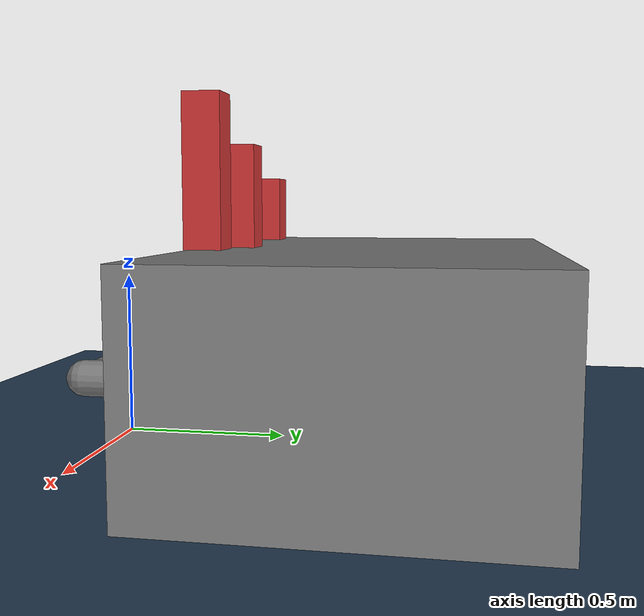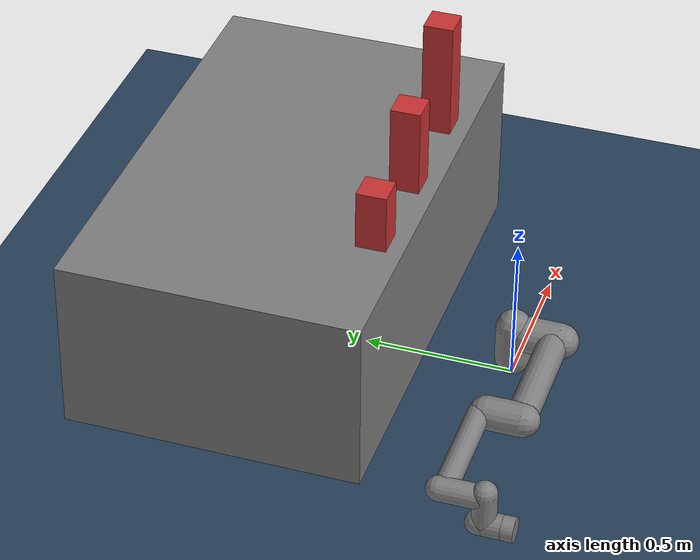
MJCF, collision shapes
<mujoco model="ur5e scene">
  <include file="ur5e.xml"/>

  <statistic center="0.3 0 0.4" extent="0.8"/>

  <visual>
    <headlight diffuse="0.6 0.6 0.6" ambient="0.1 0.1 0.1" specular="0 0 0"/>
    <rgba haze="0.15 0.25 0.35 1"/>
    <global azimuth="120" elevation="-20"/>
  </visual>

  <asset>
    <texture type="skybox" builtin="gradient" rgb1="0.3 0.5 0.7" rgb2="0 0 0" width="512" height="3072"/>
    <texture type="2d" name="groundplane" builtin="checker" mark="edge" rgb1="0.2 0.3 0.4" rgb2="0.1 0.2 0.3"
      markrgb="0.8 0.8 0.8" width="300" height="300"/>
    <material name="groundplane" texture="groundplane" texuniform="true" texrepeat="5 5" reflectance="0.2"/>
  </asset>

  <contact>
    <pair geom1="front_object_table" geom2="cube1" solref="0.02 1" solimp="0.9 0.95 0.001" />
    <pair geom1="front_object_table" geom2="cube2" solref="0.02 1" solimp="0.9 0.95 0.001" />
    <pair geom1="front_object_table" geom2="cube3" solref="0.02 1" solimp="0.9 0.95 0.001" />
  </contact>

  <worldbody>
    <light pos="0 0 1.5" dir="0 0 -1" directional="true"/>
    <geom name="floor" size="0 0 0.05" type="plane" material="groundplane"/>
  </worldbody>

  <include file="objects/table.xml"/>
  <include file="objects/cube.xml"/>

  <keyframe>
    <key name="home"
         qpos="-1.5708 -1.5708 1.5708 -1.5708 -1.5708 0 -0.25 0.4 0.71 1 0 0 0 0.1 0.4 0.75 1 0 0 0 0.45 0.4 0.81 1 0 0 0"
         ctrl="-1.5708 -1.5708 1.5708 -1.5708 -1.5708 0"/>
  </keyframe>

</mujoco>

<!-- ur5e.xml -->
<mujoco model="ur5e">
  <compiler angle="radian" meshdir="assets" autolimits="true"/>

  <option integrator="implicitfast"/>

  <default>
    <default class="ur5e">
      <material specular="0.5" shininess="0.25"/>
      <joint axis="0 1 0" range="-6.28319 6.28319" armature="0.1"/>
      <general gaintype="fixed" biastype="affine" ctrlrange="-6.2831 6.2831" gainprm="2000" biasprm="0 -2000 -400"
        forcerange="-150 150"/>
      <default class="size3">
        <default class="size3_limited">
          <joint range="-3.1415 3.1415"/>
          <general ctrlrange="-3.1415 3.1415"/>
        </default>
      </default>
      <default class="size1">
        <general gainprm="500" biasprm="0 -500 -100" forcerange="-28 28"/>
      </default>
      <default class="visual">
        <geom type="mesh" contype="0" conaffinity="0" group="2"/>
      </default>
      <default class="collision">
        <geom type="capsule" group="3"/>
        <default class="eef_collision">
          <geom type="cylinder"/>
        </default>
      </default>
      <site size="0.001" rgba="0.5 0.5 0.5 0.3" group="4"/>
    </default>
  </default>

  <asset>
    <material class="ur5e" name="black" rgba="0.033 0.033 0.033 1"/>
    <material class="ur5e" name="jointgray" rgba="0.278 0.278 0.278 1"/>
    <material class="ur5e" name="linkgray" rgba="0.82 0.82 0.82 1"/>
    <material class="ur5e" name="urblue" rgba="0.49 0.678 0.8 1"/>

    <mesh file="base_0.obj"/>
    <mesh file="base_1.obj"/>
    <mesh file="shoulder_0.obj"/>
    <mesh file="shoulder_1.obj"/>
    <mesh file="shoulder_2.obj"/>
    <mesh file="upperarm_0.obj"/>
    <mesh file="upperarm_1.obj"/>
    <mesh file="upperarm_2.obj"/>
    <mesh file="upperarm_3.obj"/>
    <mesh file="forearm_0.obj"/>
    <mesh file="forearm_1.obj"/>
    <mesh file="forearm_2.obj"/>
    <mesh file="forearm_3.obj"/>
    <mesh file="wrist1_0.obj"/>
    <mesh file="wrist1_1.obj"/>
    <mesh file="wrist1_2.obj"/>
    <mesh file="wrist2_0.obj"/>
    <mesh file="wrist2_1.obj"/>
    <mesh file="wrist2_2.obj"/>
    <mesh file="wrist3.obj"/>
  </asset>

  <worldbody>
    <light name="spotlight" mode="targetbodycom" target="wrist_2_link" pos="0 -1 2"/>
    <body name="base" quat="0 0 0 -1" childclass="ur5e">
      <inertial mass="4.0" pos="0 0 0" diaginertia="0.00443333156 0.00443333156 0.0072"/>
      <geom mesh="base_0" material="black" class="visual"/>
      <geom mesh="base_1" material="jointgray" class="visual"/>
      <body name="shoulder_link" pos="0 0 0.163">
        <inertial mass="3.7" pos="0 0 0" diaginertia="0.0102675 0.0102675 0.00666"/>
        <joint name="shoulder_pan_joint" class="size3" axis="0 0 1"/>
        <geom mesh="shoulder_0" material="urblue" class="visual"/>
        <geom mesh="shoulder_1" material="black" class="visual"/>
        <geom mesh="shoulder_2" material="jointgray" class="visual"/>
        <geom class="collision" size="0.06 0.06" pos="0 0 -0.04"/>
        <body name="upper_arm_link" pos="0 0.138 0" quat="1 0 1 0">
          <inertial mass="8.393" pos="0 0 0.2125" diaginertia="0.133886 0.133886 0.0151074"/>
          <joint name="shoulder_lift_joint" class="size3"/>
          <geom mesh="upperarm_0" material="linkgray" class="visual"/>
          <geom mesh="upperarm_1" material="black" class="visual"/>
          <geom mesh="upperarm_2" material="jointgray" class="visual"/>
          <geom mesh="upperarm_3" material="urblue" class="visual"/>
          <geom class="collision" pos="0 -0.04 0" quat="1 1 0 0" size="0.06 0.06"/>
          <geom class="collision" size="0.05 0.2" pos="0 0 0.2"/>
          <body name="forearm_link" pos="0 -0.131 0.425">
            <inertial mass="2.275" pos="0 0 0.196" diaginertia="0.0311796 0.0311796 0.004095"/>
            <joint name="elbow_joint" class="size3_limited"/>
            <geom mesh="forearm_0" material="urblue" class="visual"/>
            <geom mesh="forearm_1" material="linkgray" class="visual"/>
            <geom mesh="forearm_2" material="black" class="visual"/>
            <geom mesh="forearm_3" material="jointgray" class="visual"/>
            <geom class="collision" pos="0 0.08 0" quat="1 1 0 0" size="0.055 0.06"/>
            <geom class="collision" size="0.038 0.19" pos="0 0 0.2"/>
            <body name="wrist_1_link" pos="0 0 0.392" quat="1 0 1 0">
              <inertial mass="1.219" pos="0 0.127 0" diaginertia="0.0025599 0.0025599 0.0021942"/>
              <joint name="wrist_1_joint" class="size1"/>
              <geom mesh="wrist1_0" material="black" class="visual"/>
              <geom mesh="wrist1_1" material="urblue" class="visual"/>
              <geom mesh="wrist1_2" material="jointgray" class="visual"/>
              <geom class="collision" pos="0 0.05 0" quat="1 1 0 0" size="0.04 0.07"/>
              <body name="wrist_2_link" pos="0 0.127 0">
                <inertial mass="1.219" pos="0 0 0.1" diaginertia="0.0025599 0.0025599 0.0021942"/>
                <joint name="wrist_2_joint" axis="0 0 1" class="size1"/>
                <geom mesh="wrist2_0" material="black" class="visual"/>
                <geom mesh="wrist2_1" material="urblue" class="visual"/>
                <geom mesh="wrist2_2" material="jointgray" class="visual"/>
                <geom class="collision" size="0.04 0.06" pos="0 0 0.04"/>
                <geom class="collision" pos="0 0.02 0.1" quat="1 1 0 0" size="0.04 0.04"/>
                <body name="wrist_3_link" pos="0 0 0.1">
                  <inertial mass="0.1889" pos="0 0.0771683 0" quat="1 0 0 1"
                    diaginertia="0.000132134 9.90863e-05 9.90863e-05"/>
                  <joint name="wrist_3_joint" class="size1"/>
                  <geom material="linkgray" mesh="wrist3" class="visual"/>
                  <geom class="eef_collision" pos="0 0.08 0" quat="1 1 0 0" size="0.04 0.02"/>
                  <site name="attachment_site" pos="0 0.1 0" quat="-1 1 0 0"/>
                </body>
              </body>
            </body>
          </body>
        </body>
      </body>
    </body>
  </worldbody>

  <actuator>
    <general class="size3" name="shoulder_pan" joint="shoulder_pan_joint"/>
    <general class="size3" name="shoulder_lift" joint="shoulder_lift_joint"/>
    <general class="size3_limited" name="elbow" joint="elbow_joint"/>
    <general class="size1" name="wrist_1" joint="wrist_1_joint"/>
    <general class="size1" name="wrist_2" joint="wrist_2_joint"/>
    <general class="size1" name="wrist_3" joint="wrist_3_joint"/>
  </actuator>
</mujoco>

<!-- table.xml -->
<mujocoinclude>
    <asset>
        <material name="wood_table_mat" specular="0.5" shininess="0.5"
            rgba="0.5 0.5 0.5 1" />
    </asset>

    <worldbody>
        <body name="front_object_table" pos="0.1 0.8 0.3" euler="0 0 0">
            <geom name="front_object_table" size="0.8 0.5 0.3" pos="0 0 0" type="box"
                material="wood_table_mat" contype="1" conaffinity="1" friction="1 0.1 0.001" />
            <inertial pos="0 0 0" mass="50" diaginertia="10 10 10" />
        </body>
    </worldbody>

</mujocoinclude>

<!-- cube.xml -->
<mujocoinclude>

    <asset>
        <material name="red_cube" rgba="0.8 0.2 0.2 1"/>
    </asset>

    <worldbody>

        <!-- Red cube object -->
        <body name="red_cube_01" pos="-0.25 0.4 0.71">
            <joint type="free" />
                <geom name="cube1" type="box" size="0.05 0.05 0.1" material="red_cube" contype="1" conaffinity="1" friction="1 0.1 0.001" />
            <inertial pos="0 0 0" mass="15" diaginertia="10 10 10"/>
        </body>

        <body name="red_cube_02" pos="0.1 0.4 0.75">
            <joint type="free" />
                <geom name="cube2" type="box" size="0.05 0.05 0.15" material="red_cube" contype="1" conaffinity="1" friction="1 0.1 0.001" />
            <inertial pos="0 0 0" mass="15" diaginertia="10 10 10"/>
        </body>

        <body name="red_cube_03" pos="0.45 0.4 0.81">
            <joint type="free" />
                <geom name="cube3" type="box" size="0.05 0.05 0.2" material="red_cube" contype="1" conaffinity="1" friction="1 0.1 0.001" />
            <inertial pos="0 0 0" mass="15" diaginertia="10 10 10"/>
        </body>

    </worldbody>

</mujocoinclude>
